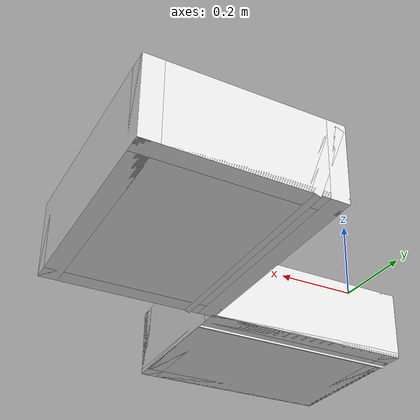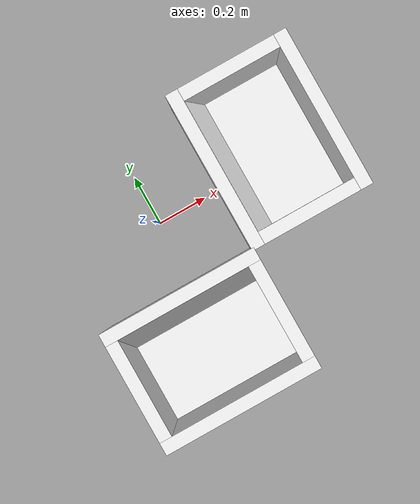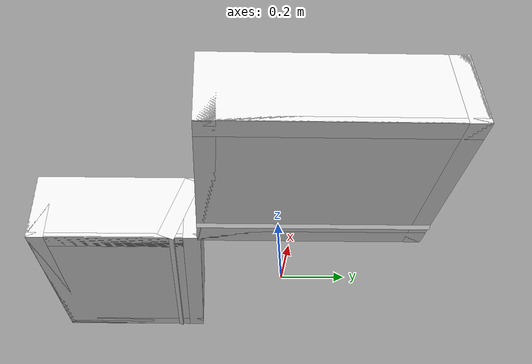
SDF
<?xml version="1.0"?>
<sdf version="1.9">
  <model name="TwoBins">
    <include>
      <pose degrees="true">-0.05, -0.5, -0.015, 0, 0, 90</pose>
      <uri>package://drake_models/manipulation_station/bin.sdf</uri>
      <name>bin0</name>
    </include>
    <joint name="weld0" type="fixed">
      <parent>world</parent>
      <child>bin0</child>
    </joint>
    <include>
      <pose degrees="true">0.5, 0.05, -0.015, 0, 0, 180</pose>
      <uri>package://drake_models/manipulation_station/bin.sdf</uri>
      <name>bin1</name>
    </include>
    <joint name="weld1" type="fixed">
      <parent>world</parent>
      <child>bin1</child>
    </joint>
  </model>
</sdf>

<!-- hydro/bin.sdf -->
<sdf version="1.7">
  <model name="bin_model">
    <!--
    Axes:
      +X - Pointing towards front (slope)
      +Y - Pointing to left side
      +Z - Up
    Origin:
      (0, 0, 0) at the center bottom of the bin
    -->
    <link name="bin_base">
      <inertial>
        <mass>18.70</mass>
        <inertia>
          <ixx>0.79</ixx>
          <ixy>0</ixy>
          <ixz>0</ixz>
          <iyy>0.53</iyy>
          <iyz>0</iyz>
          <izz>1.2</izz>
        </inertia>
      </inertial>
      <visual name="visual">
        <pose>0.22 0 0.105 0 0 0</pose>
        <geometry>
          <box>
            <size>0.05 0.63 0.21</size>
          </box>
        </geometry>
        <material>
          <diffuse>0.9 0.9 0.9 1.0</diffuse>
        </material>
      </visual>
      <collision name="front">
        <pose>0.22 0 0.105 0 0 0</pose>
        <geometry>
          <box>
            <size>0.05 0.63 0.21</size>
          </box>
        </geometry>
        <drake:proximity_properties>
          <drake:compliant_hydroelastic/>
          <drake:hydroelastic_modulus>1.0e6</drake:hydroelastic_modulus>
        </drake:proximity_properties>
      </collision>
      <visual name="slope">
        <pose>0.182 0 0.102 0 0.35 0</pose>
        <geometry>
          <box>
            <size>0.05 0.63 0.21</size>
          </box>
        </geometry>
        <material>
          <diffuse>0.9 0.9 0.9 1.0</diffuse>
        </material>
      </visual>
      <collision name="slope">
        <pose>0.182 0 0.102 0 0.35 0</pose>
        <geometry>
          <box>
            <size>0.05 0.63 0.21</size>
          </box>
        </geometry>
        <drake:proximity_properties>
          <drake:compliant_hydroelastic/>
          <drake:hydroelastic_modulus>1.0e6</drake:hydroelastic_modulus>
        </drake:proximity_properties>
      </collision>
      <visual name="back">
        <pose>-0.22 0 0.105 0 0 0</pose>
        <geometry>
          <box>
            <size>0.05 0.63 0.21</size>
          </box>
        </geometry>
        <material>
          <diffuse>0.9 0.9 0.9 1.0</diffuse>
        </material>
      </visual>
      <collision name="back">
        <pose>-0.22 0 0.105 0 0 0</pose>
        <geometry>
          <box>
            <size>0.05 0.63 0.21</size>
          </box>
        </geometry>
        <drake:proximity_properties>
          <drake:compliant_hydroelastic/>
          <drake:hydroelastic_modulus>1.0e6</drake:hydroelastic_modulus>
        </drake:proximity_properties>
      </collision>
      <visual name="left">
        <pose>0 0.29 0.105 0 0 0</pose>
        <geometry>
          <box>
            <size>0.49 0.05 0.21</size>
          </box>
        </geometry>
        <material>
          <diffuse>0.9 0.9 0.9 1.0</diffuse>
        </material>
      </visual>
      <collision name="left">
        <pose>0 0.29 0.105 0 0 0</pose>
        <geometry>
          <box>
            <size>0.49 0.05 0.21</size>
          </box>
        </geometry>
        <drake:proximity_properties>
          <drake:compliant_hydroelastic/>
          <drake:hydroelastic_modulus>1.0e6</drake:hydroelastic_modulus>
        </drake:proximity_properties>
      </collision>
      <visual name="right">
        <pose>0 -0.29 0.105 0 0 0</pose>
        <geometry>
          <box>
            <size>0.49 0.05 0.21</size>
          </box>
        </geometry>
        <material>
          <diffuse>0.9 0.9 0.9 1.0</diffuse>
        </material>
      </visual>
      <collision name="right">
        <pose>0 -0.29 0.105 0 0 0</pose>
        <geometry>
          <box>
            <size>0.49 0.05 0.21</size>
          </box>
        </geometry>
        <drake:proximity_properties>
          <drake:compliant_hydroelastic/>
          <drake:hydroelastic_modulus>1.0e6</drake:hydroelastic_modulus>
        </drake:proximity_properties>
      </collision>
      <visual name="bottom">
        <pose>0.0 0.0 0.0075 0 0 0</pose>
        <geometry>
          <box>
            <size>0.49 0.63 0.015</size>
          </box>
        </geometry>
        <material>
          <diffuse>0.9 0.9 0.9 1.0</diffuse>
        </material>
      </visual>
      <collision name="bottom">
        <pose>0.0 0.0 0.0075 0 0 0</pose>
        <geometry>
          <box>
            <size>0.49 0.63 0.015</size>
          </box>
        </geometry>
        <drake:proximity_properties>
          <drake:compliant_hydroelastic/>
          <drake:hydroelastic_modulus>1.0e6</drake:hydroelastic_modulus>
        </drake:proximity_properties>
      </collision>
    </link>
    <frame name="bin_front_top_center">
      <pose relative_to="bin_base">0.22 0 0.21 0 0 0</pose>
    </frame>
  </model>
</sdf>
